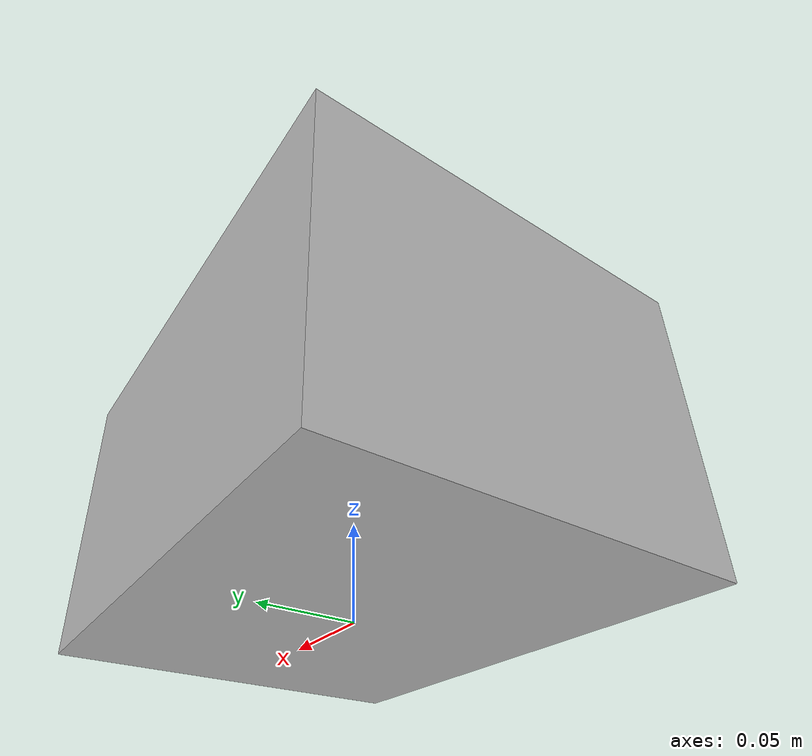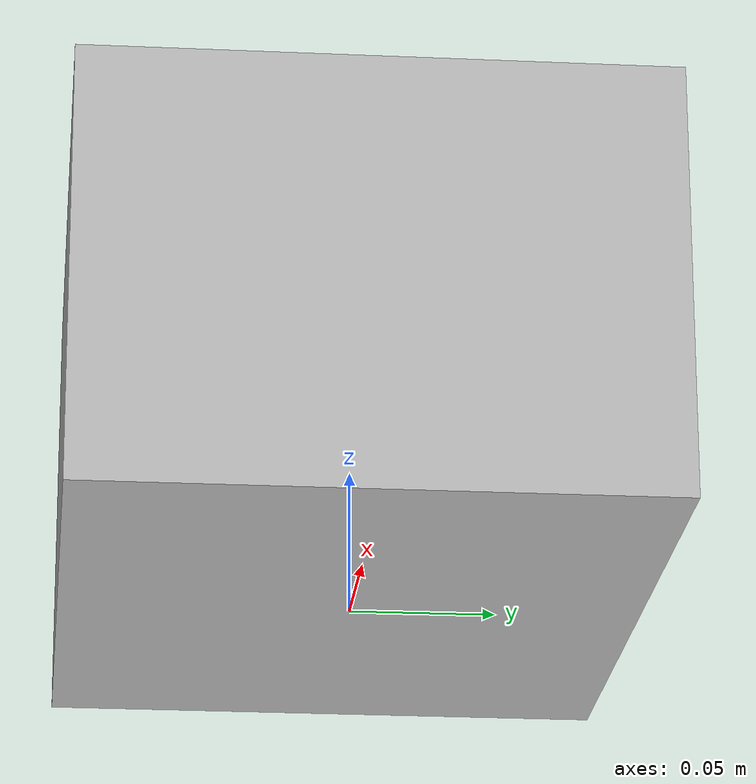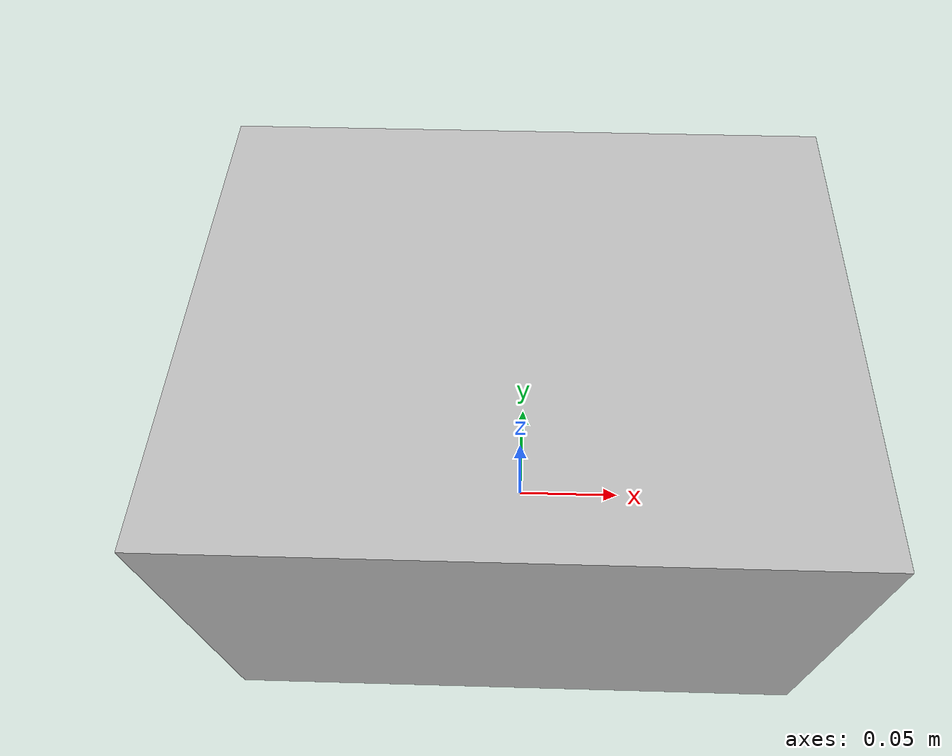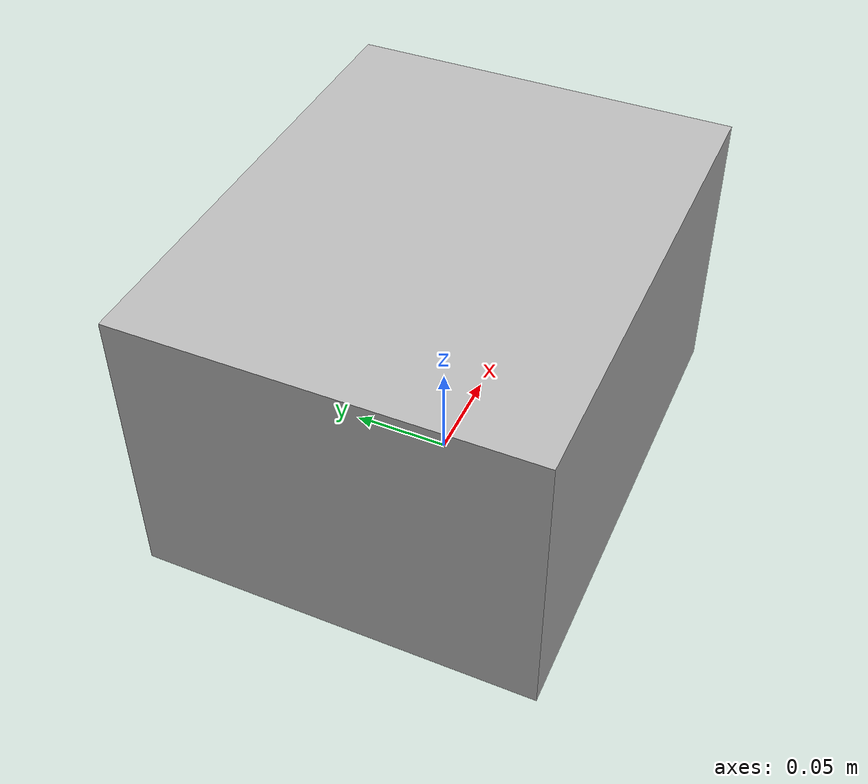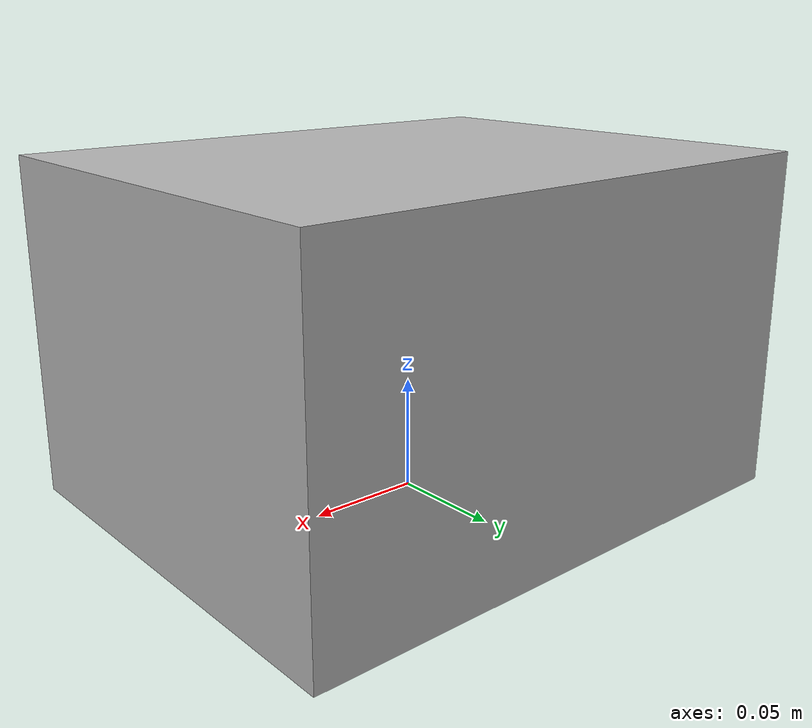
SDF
<?xml version="1.0" ?>
<sdf version="1.6">
  <model name="cardboard_box_smaller">
    <pose>0 0 0.075 0 0 0</pose> <!-- Updated pose to set center of mass correctly -->
    <link name="link">
      <inertial>
        <mass>0.5</mass> <!-- Adjusted mass: 0.5 kg (original: 2 kg) -->
        <inertia>
          <ixx>0.010416667</ixx>
          <ixy>0</ixy>
          <ixz>0</ixz>
          <iyy>0.014166667</iyy>
          <iyz>0</iyz>
          <izz>0.017083333</izz>
        </inertia>
      </inertial>
      <collision name="collision">
        <geometry>
          <box>
            <size>0.25 0.2 0.15</size>
          </box>
        </geometry>
        <surface>
          <friction>
            <ode>
              <mu>1.0</mu>
              <mu2>1.0</mu2>
            </ode>
          </friction>
          <contact>
            <ode>
              <kp>10000000.0</kp>
              <kd>1.0</kd>
              <min_depth>0.001</min_depth>
              <max_vel>0.1</max_vel>
            </ode>
          </contact>
        </surface>
      </collision>
      <visual name="visual">
        <pose>0 0 -0.075 0 0 0</pose> <!-- Updated pose to align the visual with the center of mass -->
        <geometry>
          <mesh>
            <uri>model://cardboard_box/meshes/cardboard_box.dae</uri>
            <scale>0.62965948 0.503727584 0.377795688</scale>
          </mesh>
        </geometry>
      </visual>
    </link>
  </model>
</sdf>
